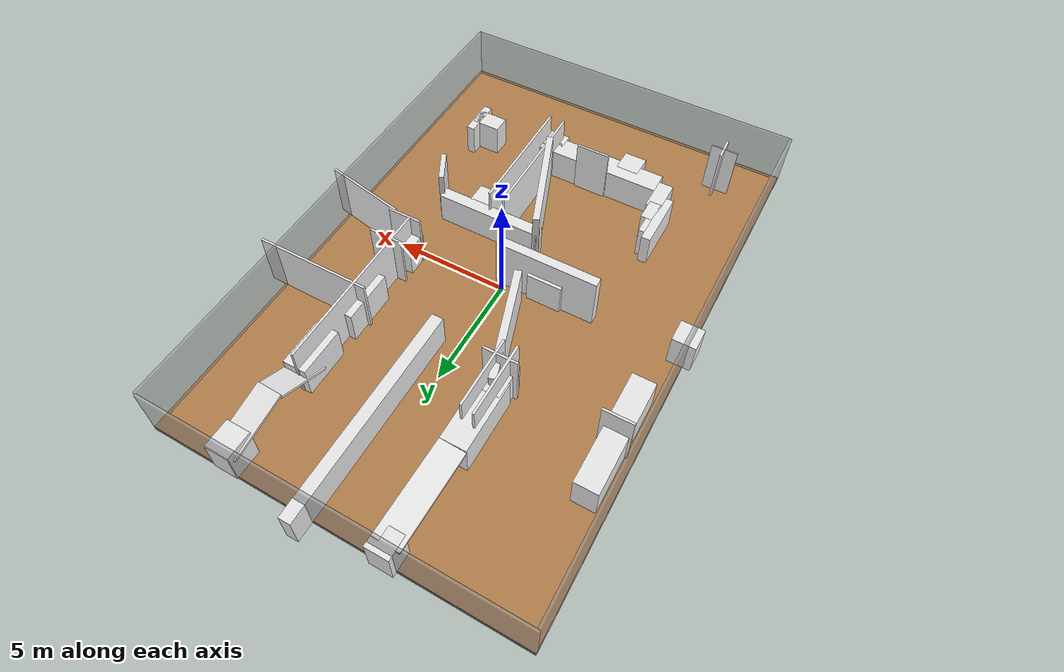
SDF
<sdf version="1.7">
 <world name="default">
  <model name="box_1">
   <pose>0.05 -12.05 1.25 0 -0 0</pose>
   <static>1</static>
   <link name="link">
    <collision name="collision"><geometry><box><size>16.1 0.1 2.5</size></box></geometry></collision>
    <visual name="visual">
     <geometry><box><size>16.1 0.1 2.5</size></box></geometry>
     <material>
      <script><name>Gazebo/GreyTransparent</name><uri>file://media/materials/scripts/gazebo.material</uri></script>
     </material>
    </visual>
   </link>
  </model>
  <model name="box_2">
   <pose>8.06174 -0.026302 1.25 0 -0 0</pose>
   <static>1</static>
   <link name="link">
    <collision name="collision"><geometry><box><size>0.1 24.1 2.5</size></box></geometry></collision>
    <visual name="visual">
     <geometry><box><size>0.1 24.1 2.5</size></box></geometry>
     <material>
      <script><name>Gazebo/GreyTransparent</name><uri>file://media/materials/scripts/gazebo.material</uri></script>
     </material>
    </visual>
   </link>
  </model>
  <model name="box_3">
   <pose>-0.05 12.05 1.25 0 -0 0</pose>
   <static>1</static>
   <link name="link">
    <collision name="collision"><geometry><box><size>16.1 0.1 2.5</size></box></geometry></collision>
    <visual name="visual">
     <geometry><box><size>16.1 0.1 2.5</size></box></geometry>
     <material>
      <script><name>Gazebo/GreyTransparent</name><uri>file://media/materials/scripts/gazebo.material</uri></script>
     </material>
    </visual>
   </link>
  </model>
  <model name="box_4">
   <pose>-8.05 -0.05 1.25 0 -0 0</pose>
   <static>1</static>
   <link name="link">
    <collision name="collision"><geometry><box><size>0.1 24.1 2.5</size></box></geometry></collision>
    <visual name="visual">
     <geometry><box><size>0.1 24.1 2.5</size></box></geometry>
     <material>
      <script><name>Gazebo/GreyTransparent</name><uri>file://media/materials/scripts/gazebo.material</uri></script>
     </material>
    </visual>
   </link>
  </model>
  <model name="box_5">
   <pose>0.032076 -0.052717 -0.05 0 -0 0</pose>
   <static>1</static>
   <link name="link">
    <collision name="collision"><geometry><box><size>16.2 24.2 0.1</size></box></geometry></collision>
    <visual name="visual">
     <geometry><box><size>16.2 24.2 0.1</size></box></geometry>
     <material>
      <script><name>Gazebo/WoodFloor</name><uri>file://media/materials/scripts/gazebo.material</uri></script>
     </material>
    </visual>
   </link>
  </model>
  <model name="box_8_clone">
   <pose>6.77562 -0.136237 1.25 0 0 -0.191358</pose>
   <static>1</static>
   <link name="link">
    <collision name="collision"><geometry><box><size>3.67087 0.1 2.5</size></box></geometry></collision>
    <visual name="visual">
     <geometry><box><size>3.67087 0.1 2.5</size></box></geometry>
     <material>
      <script><name>Gazebo/White</name><uri>file://media/materials/scripts/gazebo.material</uri></script>
     </material>
    </visual>
   </link>
  </model>
  <model name="box_9_clone_clone_0">
   <pose>-2.15604 -8.14408 0.75 0 -0 0</pose>
   <static>1</static>
   <link name="link">
    <collision name="collision"><geometry><box><size>1 1 1.5</size></box></geometry></collision>
    <visual name="visual">
     <geometry><box><size>1 1 1.5</size></box></geometry>
     <material>
      <script><name>Gazebo/White</name><uri>file://media/materials/scripts/gazebo.material</uri></script>
     </material>
    </visual>
   </link>
  </model>
  <model name="box_9_clone_clone_1">
   <pose>-0.652667 -7.55684 0.75 0 -0 0</pose>
   <static>1</static>
   <link name="link">
    <collision name="collision"><geometry><box><size>6.13337 1 1.5</size></box></geometry></collision>
    <visual name="visual">
     <geometry><box><size>6.13337 1 1.5</size></box></geometry>
     <material>
      <script><name>Gazebo/White</name><uri>file://media/materials/scripts/gazebo.material</uri></script>
     </material>
    </visual>
   </link>
  </model>
  <model name="box_9_clone_clone_2">
   <pose>-4.04829 -6.91377 0.75 0 -0 0</pose>
   <static>1</static>
   <link name="link">
    <collision name="collision"><geometry><box><size>0.657977 1.50863 1.5</size></box></geometry></collision>
    <visual name="visual">
     <geometry><box><size>0.657977 1.50863 1.5</size></box></geometry>
     <material>
      <script><name>Gazebo/White</name><uri>file://media/materials/scripts/gazebo.material</uri></script>
     </material>
    </visual>
   </link>
  </model>
  <model name="box_9_clone_clone_3">
   <pose>5.41888 -7.41692 0.75 0 -0 0</pose>
   <static>1</static>
   <link name="link">
    <collision name="collision"><geometry><box><size>0.362072 1.66543 1.5</size></box></geometry></collision>
    <visual name="visual">
     <geometry><box><size>0.362072 1.66543 1.5</size></box></geometry>
     <material>
      <script><name>Gazebo/White</name><uri>file://media/materials/scripts/gazebo.material</uri></script>
     </material>
    </visual>
   </link>
  </model>
  <model name="box_8_clone_clone_13_clone_clone_clone_clone_0">
   <pose>-1.64405 2.58348 0.706232 0 0 -1.25291</pose>
   <static>1</static>
   <link name="link">
    <collision name="collision"><geometry><box><size>5.15136 0.325829 2.5</size></box></geometry></collision>
    <visual name="visual">
     <geometry><box><size>5.15136 0.325829 2.5</size></box></geometry>
     <material>
      <script><name>Gazebo/White</name><uri>file://media/materials/scripts/gazebo.material</uri></script>
     </material>
    </visual>
   </link>
  </model>
  <model name="box_8_clone_clone_11_clone">
   <pose>0.508779 -4.53679 1.25 0 0 -2.77666</pose>
   <static>1</static>
   <link name="link">
    <collision name="collision"><geometry><box><size>0.290754 5.04986 2.5</size></box></geometry></collision>
    <visual name="visual">
     <geometry><box><size>0.290754 5.04986 2.5</size></box></geometry>
     <material>
      <script><name>Gazebo/White</name><uri>file://media/materials/scripts/gazebo.material</uri></script>
     </material>
    </visual>
   </link>
  </model>
  <model name="box_8_clone_clone_4_clone_2">
   <pose>-7.16333 4.45808 1.25 0 -0 0</pose>
   <static>1</static>
   <link name="link">
    <collision name="collision"><geometry><box><size>1.26584 0.1 2.5</size></box></geometry></collision>
    <visual name="visual">
     <geometry><box><size>1.26584 0.1 2.5</size></box></geometry>
     <material>
      <script><name>Gazebo/White</name><uri>file://media/materials/scripts/gazebo.material</uri></script>
     </material>
    </visual>
   </link>
  </model>
  <model name="box_9_clone_clone_7_clone">
   <pose>-7.20708 4.47733 0.75 0 -0 0</pose>
   <static>1</static>
   <link name="link">
    <collision name="collision"><geometry><box><size>1 4.97616 1.5</size></box></geometry></collision>
    <visual name="visual">
     <geometry><box><size>1 4.97616 1.5</size></box></geometry>
     <material>
      <script><name>Gazebo/White</name><uri>file://media/materials/scripts/gazebo.material</uri></script>
     </material>
    </visual>
   </link>
  </model>
  <model name="box_9_clone_clone_7_clone_clone">
   <pose>-7.89766 -0.627489 0.75 0 -0 0</pose>
   <static>1</static>
   <link name="link">
    <collision name="collision"><geometry><box><size>1 1 1.5</size></box></geometry></collision>
    <visual name="visual">
     <geometry><box><size>1 1 1.5</size></box></geometry>
     <material>
      <script><name>Gazebo/White</name><uri>file://media/materials/scripts/gazebo.material</uri></script>
     </material>
    </visual>
   </link>
  </model>
  <model name="box_9_clone_clone_7_clone_clone_3">
   <pose>-4.51233 -5.59662 0.75 0 -0 0</pose>
   <static>1</static>
   <link name="link">
    <collision name="collision"><geometry><box><size>0.396462 2.57973 1.5</size></box></geometry></collision>
    <visual name="visual">
     <geometry><box><size>0.396462 2.57973 1.5</size></box></geometry>
     <material>
      <script><name>Gazebo/White</name><uri>file://media/materials/scripts/gazebo.material</uri></script>
     </material>
    </visual>
   </link>
  </model>
  <model name="box_9_clone_clone_7_clone_clone_4">
   <pose>-4.26983 -5.10984 0.75 0 -0 0</pose>
   <static>1</static>
   <link name="link">
    <collision name="collision"><geometry><box><size>0.426828 1 1.5</size></box></geometry></collision>
    <visual name="visual">
     <geometry><box><size>0.426828 1 1.5</size></box></geometry>
     <material>
      <script><name>Gazebo/White</name><uri>file://media/materials/scripts/gazebo.material</uri></script>
     </material>
    </visual>
   </link>
  </model>
  <model name="box_9_clone_clone_7_clone_clone_5">
   <pose>-4.09195 -5.89475 0.75 0 -0 0</pose>
   <static>1</static>
   <link name="link">
    <collision name="collision"><geometry><box><size>0.542495 1 1.5</size></box></geometry></collision>
    <visual name="visual">
     <geometry><box><size>0.542495 1 1.5</size></box></geometry>
     <material>
      <script><name>Gazebo/White</name><uri>file://media/materials/scripts/gazebo.material</uri></script>
     </material>
    </visual>
   </link>
  </model>
  <model name="box_9_clone_clone_5_clone_2_clone_0">
   <pose>4.39452 6.95643 0.75 0 -0 0</pose>
   <static>1</static>
   <link name="link">
    <collision name="collision"><geometry><box><size>1.02973 2.0893 1.5</size></box></geometry></collision>
    <visual name="visual">
     <geometry><box><size>1.02973 2.0893 1.5</size></box></geometry>
     <material>
      <script><name>Gazebo/White</name><uri>file://media/materials/scripts/gazebo.material</uri></script>
     </material>
    </visual>
   </link>
  </model>
  <model name="box_9_clone_clone_5_clone_2_clone_0_clone_0">
   <pose>4.9014 -7.50411 0.75 0 -0 0</pose>
   <static>1</static>
   <link name="link">
    <collision name="collision"><geometry><box><size>1.28925 0.799086 1.5</size></box></geometry></collision>
    <visual name="visual">
     <geometry><box><size>1.28925 0.799086 1.5</size></box></geometry>
     <material>
      <script><name>Gazebo/White</name><uri>file://media/materials/scripts/gazebo.material</uri></script>
     </material>
    </visual>
   </link>
  </model>
  <model name="box_6_clone_clone_4_clone">
   <pose>4.47434 10.5847 1.40455 0 -1.3182 1.53996</pose>
   <static>1</static>
   <link name="link">
    <collision name="collision"><geometry><box><size>0.1 1.08009 2.76392</size></box></geometry></collision>
    <visual name="visual">
     <geometry><box><size>0.1 1.08009 2.76392</size></box></geometry>
     <material>
      <script><name>Gazebo/White</name><uri>file://media/materials/scripts/gazebo.material</uri></script>
     </material>
    </visual>
   </link>
  </model>
  <model name="box_9_clone_clone_7_clone_clone_clone">
   <pose>-1.8693 -0.62781 0.75 0 -0 0</pose>
   <static>1</static>
   <link name="link">
    <collision name="collision"><geometry><box><size>1.53323 1 1.5</size></box></geometry></collision>
    <visual name="visual">
     <geometry><box><size>1.53323 1 1.5</size></box></geometry>
     <material>
      <script><name>Gazebo/White</name><uri>file://media/materials/scripts/gazebo.material</uri></script>
     </material>
    </visual>
   </link>
  </model>
  <model name="box_8_clone_clone_3_clone">
   <pose>6.25131 4.20674 1.25 0 -0 0</pose>
   <static>1</static>
   <link name="link">
    <collision name="collision"><geometry><box><size>5.04273 0.1 2.5</size></box></geometry></collision>
    <visual name="visual">
     <geometry><box><size>5.04273 0.1 2.5</size></box></geometry>
     <material>
      <script><name>Gazebo/White</name><uri>file://media/materials/scripts/gazebo.material</uri></script>
     </material>
    </visual>
   </link>
  </model>
  <model name="box_9_clone_clone_7_clone_0">
   <pose>0.952701 8.1379 0.75 0 -0 0</pose>
   <static>1</static>
   <link name="link">
    <collision name="collision"><geometry><box><size>0.511994 9.49899 1.5</size></box></geometry></collision>
    <visual name="visual">
     <geometry><box><size>0.511994 9.49899 1.5</size></box></geometry>
     <material>
      <script><name>Gazebo/White</name><uri>file://media/materials/scripts/gazebo.material</uri></script>
     </material>
    </visual>
   </link>
  </model>
  <model name="box_9_clone_clone_9_clone">
   <pose>-2.30467 11.7929 0.75 0 -0 0</pose>
   <static>1</static>
   <link name="link">
    <collision name="collision"><geometry><box><size>1 1 1.5</size></box></geometry></collision>
    <visual name="visual">
     <geometry><box><size>1 1 1.5</size></box></geometry>
     <material>
      <script><name>Gazebo/White</name><uri>file://media/materials/scripts/gazebo.material</uri></script>
     </material>
    </visual>
   </link>
  </model>
  <model name="box_6_clone_clone_3_clone_clone_clone">
   <pose>-2.74377 5.24994 1.25 0 -0 0</pose>
   <static>1</static>
   <link name="link">
    <collision name="collision"><geometry><box><size>0.1 3.23033 2.5</size></box></geometry></collision>
    <visual name="visual">
     <geometry><box><size>0.1 3.23033 2.5</size></box></geometry>
     <material>
      <script><name>Gazebo/White</name><uri>file://media/materials/scripts/gazebo.material</uri></script>
     </material>
    </visual>
   </link>
  </model>
  <model name="box_6_clone_clone_3_clone_clone_clone_clone">
   <pose>4.22525 4.13827 1.25 0 -0 0</pose>
   <static>1</static>
   <link name="link">
    <collision name="collision"><geometry><box><size>0.1 7.79388 2.5</size></box></geometry></collision>
    <visual name="visual">
     <geometry><box><size>0.1 7.79388 2.5</size></box></geometry>
     <material>
      <script><name>Gazebo/White</name><uri>file://media/materials/scripts/gazebo.material</uri></script>
     </material>
    </visual>
   </link>
  </model>
  <model name="box_6_clone_clone_3_clone_clone_clone_clone_0">
   <pose>2.0182 -5.31678 1.25 0 -0 0</pose>
   <static>1</static>
   <link name="link">
    <collision name="collision"><geometry><box><size>0.1 5.60332 2.5</size></box></geometry></collision>
    <visual name="visual">
     <geometry><box><size>0.1 5.60332 2.5</size></box></geometry>
     <material>
      <script><name>Gazebo/White</name><uri>file://media/materials/scripts/gazebo.material</uri></script>
     </material>
    </visual>
   </link>
  </model>
  <model name="box_6_clone_clone_3_clone_clone_clone_clone_0_clone">
   <pose>1.33283 -5.29976 1.25 0 -0 0</pose>
   <static>1</static>
   <link name="link">
    <collision name="collision"><geometry><box><size>0.1 5.60332 2.5</size></box></geometry></collision>
    <visual name="visual">
     <geometry><box><size>0.1 5.60332 2.5</size></box></geometry>
     <material>
      <script><name>Gazebo/White</name><uri>file://media/materials/scripts/gazebo.material</uri></script>
     </material>
    </visual>
   </link>
  </model>
  <model name="box_9_clone_clone_5_clone_2_clone_0_clone_clone">
   <pose>1.9475 -2.43744 0.75 0 -0 0</pose>
   <static>1</static>
   <link name="link">
    <collision name="collision"><geometry><box><size>4.74882 0.537178 1.5</size></box></geometry></collision>
    <visual name="visual">
     <geometry><box><size>4.74882 0.537178 1.5</size></box></geometry>
     <material>
      <script><name>Gazebo/White</name><uri>file://media/materials/scripts/gazebo.material</uri></script>
     </material>
    </visual>
   </link>
  </model>
  <model name="box_8_clone_clone">
   <pose>4.47101 0.276191 1.25 0 -0 0</pose>
   <static>1</static>
   <link name="link">
    <collision name="collision"><geometry><box><size>1.5 0.1 2.5</size></box></geometry></collision>
    <visual name="visual">
     <geometry><box><size>1.5 0.1 2.5</size></box></geometry>
     <material>
      <script><name>Gazebo/White</name><uri>file://media/materials/scripts/gazebo.material</uri></script>
     </material>
    </visual>
   </link>
  </model>
  <model name="box_9_clone_clone_7_clone_clone_0">
   <pose>-2.43804 4.59154 0.75 0 -0 0</pose>
   <static>1</static>
   <link name="link">
    <collision name="collision"><geometry><box><size>1 1.54675 1.5</size></box></geometry></collision>
    <visual name="visual">
     <geometry><box><size>1 1.54675 1.5</size></box></geometry>
     <material>
      <script><name>Gazebo/White</name><uri>file://media/materials/scripts/gazebo.material</uri></script>
     </material>
    </visual>
   </link>
  </model>
  <model name="box_9_clone_clone_5_clone_2_clone_0_clone_0_clone">
   <pose>1.56966 -7.808 0.75 0 -0 0</pose>
   <static>1</static>
   <link name="link">
    <collision name="collision"><geometry><box><size>1 1 1.5</size></box></geometry></collision>
    <visual name="visual">
     <geometry><box><size>1 1 1.5</size></box></geometry>
     <material>
      <script><name>Gazebo/White</name><uri>file://media/materials/scripts/gazebo.material</uri></script>
     </material>
    </visual>
   </link>
  </model>
  <model name="box_9_clone_clone_5_clone_2_clone_clone_clone_0_clone">
   <pose>4.3636 3.94247 0.75 0 -0 0</pose>
   <static>1</static>
   <link name="link">
    <collision name="collision"><geometry><box><size>0.996807 2.34121 1.5</size></box></geometry></collision>
    <visual name="visual">
     <geometry><box><size>0.996807 2.34121 1.5</size></box></geometry>
     <material>
      <script><name>Gazebo/White</name><uri>file://media/materials/scripts/gazebo.material</uri></script>
     </material>
    </visual>
   </link>
  </model>
  <model name="box_9_clone_clone_5_clone_2_clone_clone_clone_0_clone_clone">
   <pose>4.24919 0.631939 0.75 0 -0 0</pose>
   <static>1</static>
   <link name="link">
    <collision name="collision"><geometry><box><size>1 1 1.5</size></box></geometry></collision>
    <visual name="visual">
     <geometry><box><size>1 1 1.5</size></box></geometry>
     <material>
      <script><name>Gazebo/White</name><uri>file://media/materials/scripts/gazebo.material</uri></script>
     </material>
    </visual>
   </link>
  </model>
  <model name="box_6_clone_clone_3_clone_clone_clone_clone_1">
   <pose>-2.16782 5.21001 1.25 0 -0 0.001144</pose>
   <static>1</static>
   <link name="link">
    <collision name="collision"><geometry><box><size>0.1 3.12165 2.5</size></box></geometry></collision>
    <visual name="visual">
     <geometry><box><size>0.1 3.12165 2.5</size></box></geometry>
     <material>
      <script><name>Gazebo/White</name><uri>file://media/materials/scripts/gazebo.material</uri></script>
     </material>
    </visual>
   </link>
  </model>
  <model name="box_9_clone_clone_8_clone_0_clone">
   <pose>-2.43485 6.21978 0.75 0 -0 0</pose>
   <static>1</static>
   <link name="link">
    <collision name="collision"><geometry><box><size>1.12201 3.13013 1.5</size></box></geometry></collision>
    <visual name="visual">
     <geometry><box><size>1.12201 3.13013 1.5</size></box></geometry>
     <material>
      <script><name>Gazebo/White</name><uri>file://media/materials/scripts/gazebo.material</uri></script>
     </material>
    </visual>
   </link>
  </model>
  <model name="box_8_clone_clone_3_clone_clone_clone">
   <pose>-1.81749 -0.479811 1.25 0 -0 0</pose>
   <static>1</static>
   <link name="link">
    <collision name="collision"><geometry><box><size>4.47714 0.415191 2.5</size></box></geometry></collision>
    <visual name="visual">
     <geometry><box><size>4.47714 0.415191 2.5</size></box></geometry>
     <material>
      <script><name>Gazebo/White</name><uri>file://media/materials/scripts/gazebo.material</uri></script>
     </material>
    </visual>
   </link>
  </model>
  <model name="box_6_clone_clone_4_clone_clone">
   <pose>4.38248 8.16427 1.1171 0 -1.11157 -1.60232</pose>
   <static>1</static>
   <link name="link">
    <collision name="collision"><geometry><box><size>0.1 1.10854 2.5</size></box></geometry></collision>
    <visual name="visual">
     <geometry><box><size>0.1 1.10854 2.5</size></box></geometry>
     <material>
      <script><name>Gazebo/White</name><uri>file://media/materials/scripts/gazebo.material</uri></script>
     </material>
    </visual>
   </link>
  </model>
  <model name="box_9_clone_clone_5_clone_2_clone_0_clone_0_clone_0">
   <pose>2.56687 -3.08492 0.75 0 -0 0</pose>
   <static>1</static>
   <link name="link">
    <collision name="collision"><geometry><box><size>1 1 1.5</size></box></geometry></collision>
    <visual name="visual">
     <geometry><box><size>1 1 1.5</size></box></geometry>
     <material>
      <script><name>Gazebo/White</name><uri>file://media/materials/scripts/gazebo.material</uri></script>
     </material>
    </visual>
   </link>
  </model>
  <model name="box_8_clone_clone_11_clone_clone">
   <pose>4.63895 -2.95641 1.25 0 0 -1.09561</pose>
   <static>1</static>
   <link name="link">
    <collision name="collision"><geometry><box><size>1.42492 0.223976 2.5</size></box></geometry></collision>
    <visual name="visual">
     <geometry><box><size>1.42492 0.223976 2.5</size></box></geometry>
     <material>
      <script><name>Gazebo/White</name><uri>file://media/materials/scripts/gazebo.material</uri></script>
     </material>
    </visual>
   </link>
  </model>
  <model name="box_8_clone_clone_11_clone_clone_0">
   <pose>-5.67141 -10.0374 1.25 0 -0 1.62008</pose>
   <static>1</static>
   <link name="link">
    <collision name="collision"><geometry><box><size>1.06277 0.1 2.5</size></box></geometry></collision>
    <visual name="visual">
     <geometry><box><size>1.06277 0.1 2.5</size></box></geometry>
     <material>
      <script><name>Gazebo/White</name><uri>file://media/materials/scripts/gazebo.material</uri></script>
     </material>
    </visual>
   </link>
  </model>
  <model name="box_8_clone_clone_11_clone_clone_1">
   <pose>-5.71384 -9.99262 1.25 0 -0 0</pose>
   <static>1</static>
   <link name="link">
    <collision name="collision"><geometry><box><size>1.19714 0.0589998 2.5</size></box></geometry></collision>
    <visual name="visual">
     <geometry><box><size>1.19714 0.0589998 2.5</size></box></geometry>
     <material>
      <script><name>Gazebo/White</name><uri>file://media/materials/scripts/gazebo.material</uri></script>
     </material>
    </visual>
   </link>
  </model>
  <model name="box_8_clone_clone_11_clone_clone_1_clone">
   <pose>-0.668626 -7.0443 1.25 0 -0 0</pose>
   <static>1</static>
   <link name="link">
    <collision name="collision"><geometry><box><size>1.5 0.1 2.5</size></box></geometry></collision>
    <visual name="visual">
     <geometry><box><size>1.5 0.1 2.5</size></box></geometry>
     <material>
      <script><name>Gazebo/White</name><uri>file://media/materials/scripts/gazebo.material</uri></script>
     </material>
    </visual>
   </link>
  </model>
  <model name="box_8_clone_clone_4_clone_2_clone">
   <pose>-2.37022 4.28765 1.25 0 -0 0</pose>
   <static>1</static>
   <link name="link">
    <collision name="collision"><geometry><box><size>1.5 0.1 2.5</size></box></geometry></collision>
    <visual name="visual">
     <geometry><box><size>1.5 0.1 2.5</size></box></geometry>
     <material>
      <script><name>Gazebo/White</name><uri>file://media/materials/scripts/gazebo.material</uri></script>
     </material>
    </visual>
   </link>
  </model>
  <model name="box_8_clone_clone_4_clone_2_clone_clone">
   <pose>4.50184 1.59903 1.25 0 -0 0</pose>
   <static>1</static>
   <link name="link">
    <collision name="collision"><geometry><box><size>1.5 0.1 2.5</size></box></geometry></collision>
    <visual name="visual">
     <geometry><box><size>1.5 0.1 2.5</size></box></geometry>
     <material>
      <script><name>Gazebo/White</name><uri>file://media/materials/scripts/gazebo.material</uri></script>
     </material>
    </visual>
   </link>
  </model>
  <model name="box_9_clone_clone_5_clone_2_clone_0_clone">
   <pose>4.57033 11.5179 0.75 0 -0 0</pose>
   <static>1</static>
   <link name="link">
    <collision name="collision"><geometry><box><size>1.0548 1.22023 1.5</size></box></geometry></collision>
    <visual name="visual">
     <geometry><box><size>1.0548 1.22023 1.5</size></box></geometry>
     <material>
      <script><name>Gazebo/White</name><uri>file://media/materials/scripts/gazebo.material</uri></script>
     </material>
    </visual>
   </link>
  </model>
  <model name="box_8_clone_clone_3_clone_clone_clone_0">
   <pose>-2.41847 9.84203 1.44047 -1.57067 -0.035681 -0.014782</pose>
   <static>1</static>
   <link name="link">
    <collision name="collision"><geometry><box><size>1.1445 0.1 4.08788</size></box></geometry></collision>
    <visual name="visual">
     <geometry><box><size>1.1445 0.1 4.08788</size></box></geometry>
     <material>
      <script><name>Gazebo/White</name><uri>file://media/materials/scripts/gazebo.material</uri></script>
     </material>
    </visual>
   </link>
  </model>
 </world>
</sdf>
